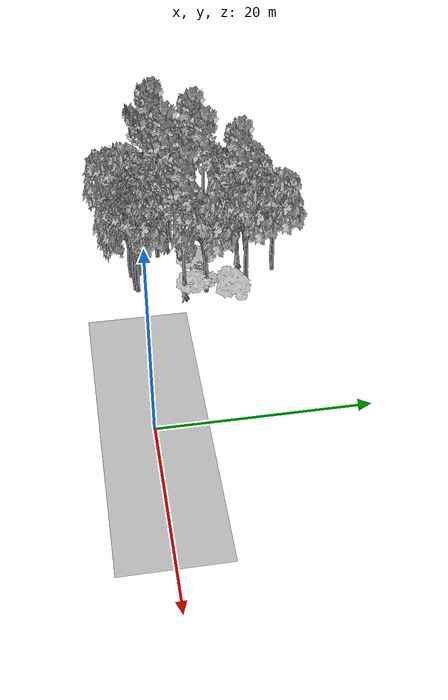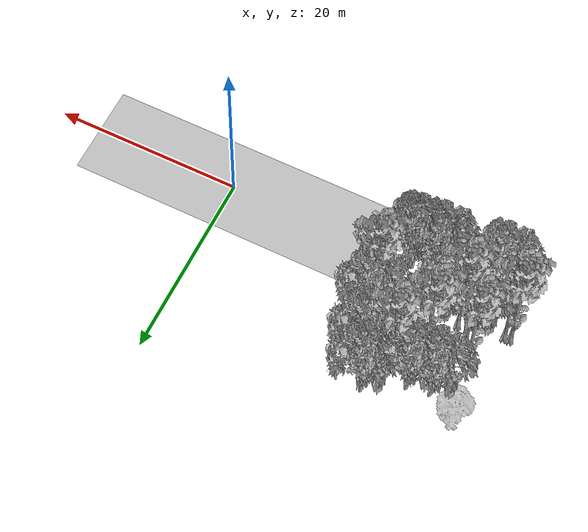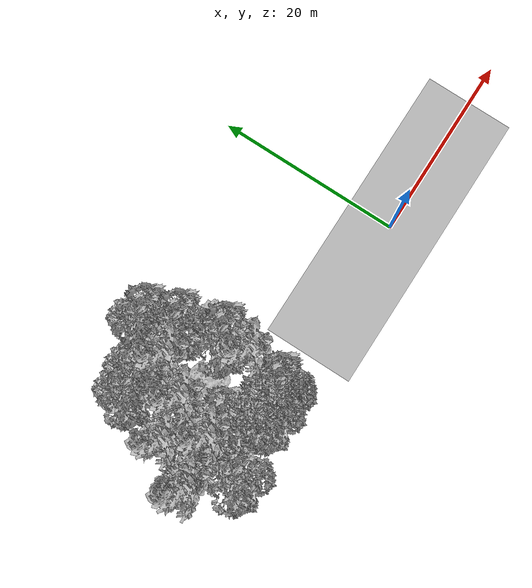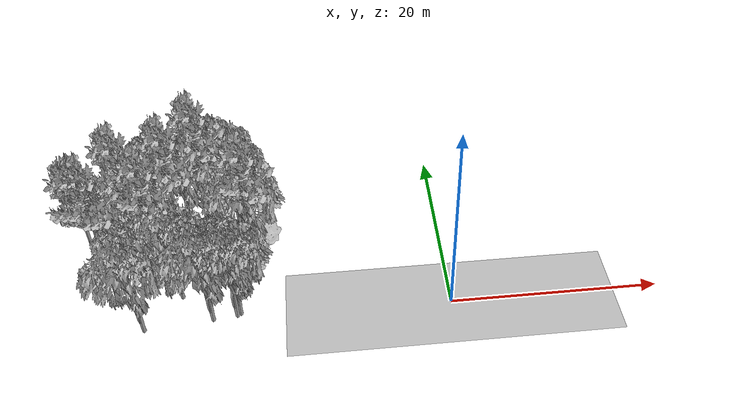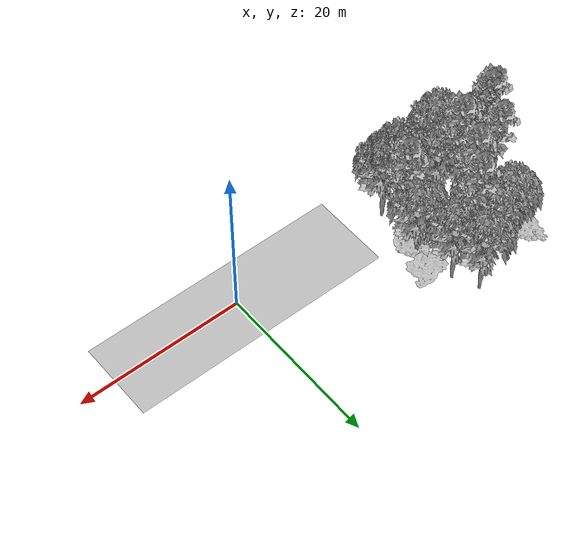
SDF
<sdf version="1.7">
 <world name="default">
  <model name="ground_plane">
   <static>1</static>
   <link name="link">
    <collision name="collision">
     <pose>-50 0 0 0 -0 0</pose>
     <geometry><plane><normal>0 0 1</normal><size>100 100</size></plane></geometry>
     <surface><contact><ode><min_depth>0.01</min_depth><max_vel>0</max_vel></ode></contact></surface>
    </collision>
    <visual name="grass">
     <cast_shadows>0</cast_shadows>
     <geometry>
      <mesh>
       <scale>0.5814285714285714 0.18142857142857144 0.1</scale>
       <uri>file://grass_plane/meshes/grass_plane.dae</uri>
      </mesh>
     </geometry>
    </visual>
   </link>
  </model>
  <model name="Tree 10">
   <static>1</static>
   <pose>-18.453464350637507 5.146567638253263 0 1.57079 -0 0</pose>
   <link name="link">
    <collision name="collision">
     <geometry><mesh><scale>3.5 5 3.5</scale><uri>model://tree_9/meshes/tree_9.obj</uri></mesh></geometry>
    </collision>
    <visual name="visual">
     <geometry><mesh><scale>3.5 5 3.5</scale><uri>model://tree_9/meshes/tree_9.obj</uri></mesh></geometry>
    </visual>
   </link>
  </model>
  <model name="Tree 18">
   <static>1</static>
   <pose>-25.53865518856384 3.1005544694515983 0 1.57079 -0 0</pose>
   <link name="link">
    <collision name="collision">
     <geometry><mesh><scale>3.5 5 3.5</scale><uri>model://tree_2/meshes/tree_2.obj</uri></mesh></geometry>
    </collision>
    <visual name="visual">
     <geometry><mesh><scale>3.5 5 3.5</scale><uri>model://tree_2/meshes/tree_2.obj</uri></mesh></geometry>
    </visual>
   </link>
  </model>
  <model name="Tree 19">
   <static>1</static>
   <pose>-23.327662387530005 6.976736187923045 0 1.57079 -0 0</pose>
   <link name="link">
    <collision name="collision">
     <geometry><mesh><scale>4 2.5 4</scale><uri>model://tree_1/meshes/tree_1.obj</uri></mesh></geometry>
    </collision>
    <visual name="visual">
     <geometry><mesh><scale>4 2.5 4</scale><uri>model://tree_1/meshes/tree_1.obj</uri></mesh></geometry>
    </visual>
   </link>
  </model>
  <model name="Tree 30">
   <static>1</static>
   <pose>-22.51316490393116 -0.0031905332640533857 0 1.57079 -0 0</pose>
   <link name="link">
    <collision name="collision">
     <geometry><mesh><scale>3.5 5 3.5</scale><uri>model://tree_2/meshes/tree_2.obj</uri></mesh></geometry>
    </collision>
    <visual name="visual">
     <geometry><mesh><scale>3.5 5 3.5</scale><uri>model://tree_2/meshes/tree_2.obj</uri></mesh></geometry>
    </visual>
   </link>
  </model>
  <model name="Tree 34">
   <static>1</static>
   <pose>-19.95909837796274 0.46358298691831656 0 1.57079 -0 0</pose>
   <link name="link">
    <collision name="collision">
     <geometry><mesh><scale>3.5 5 3.5</scale><uri>model://tree_2/meshes/tree_2.obj</uri></mesh></geometry>
    </collision>
    <visual name="visual">
     <geometry><mesh><scale>3.5 5 3.5</scale><uri>model://tree_2/meshes/tree_2.obj</uri></mesh></geometry>
    </visual>
   </link>
  </model>
  <model name="Tree 44">
   <static>1</static>
   <pose>-25.282216749314564 8.10107365355509 0 1.57079 -0 0</pose>
   <link name="link">
    <collision name="collision">
     <geometry><mesh><scale>3.5 5 3.5</scale><uri>model://tree_9/meshes/tree_9.obj</uri></mesh></geometry>
    </collision>
    <visual name="visual">
     <geometry><mesh><scale>3.5 5 3.5</scale><uri>model://tree_9/meshes/tree_9.obj</uri></mesh></geometry>
    </visual>
   </link>
  </model>
  <model name="Tree 51">
   <static>1</static>
   <pose>-32.13080495679428 3.33322170464767 0 1.57079 -0 0</pose>
   <link name="link">
    <collision name="collision">
     <geometry><mesh><scale>3.5 5 3.5</scale><uri>model://tree_9/meshes/tree_9.obj</uri></mesh></geometry>
    </collision>
    <visual name="visual">
     <geometry><mesh><scale>3.5 5 3.5</scale><uri>model://tree_9/meshes/tree_9.obj</uri></mesh></geometry>
    </visual>
   </link>
  </model>
  <model name="Tree 66">
   <static>1</static>
   <pose>-20.278403189005754 0.25568256909267184 0 1.57079 -0 0</pose>
   <link name="link">
    <collision name="collision">
     <geometry><mesh><scale>3.5 5 3.5</scale><uri>model://tree_2/meshes/tree_2.obj</uri></mesh></geometry>
    </collision>
    <visual name="visual">
     <geometry><mesh><scale>3.5 5 3.5</scale><uri>model://tree_2/meshes/tree_2.obj</uri></mesh></geometry>
    </visual>
   </link>
  </model>
  <model name="Tree 68">
   <static>1</static>
   <pose>-27.563422004254452 12.173228651601427 0 1.57079 -0 0</pose>
   <link name="link">
    <collision name="collision">
     <geometry><mesh><scale>3.5 5 3.5</scale><uri>model://tree_2/meshes/tree_2.obj</uri></mesh></geometry>
    </collision>
    <visual name="visual">
     <geometry><mesh><scale>3.5 5 3.5</scale><uri>model://tree_2/meshes/tree_2.obj</uri></mesh></geometry>
    </visual>
   </link>
  </model>
  <model name="Tree 82">
   <static>1</static>
   <pose>-28.015516602993937 4.72841905503503 0 1.57079 -0 0</pose>
   <link name="link">
    <collision name="collision">
     <geometry><mesh><scale>3.5 5 3.5</scale><uri>model://tree_2/meshes/tree_2.obj</uri></mesh></geometry>
    </collision>
    <visual name="visual">
     <geometry><mesh><scale>3.5 5 3.5</scale><uri>model://tree_2/meshes/tree_2.obj</uri></mesh></geometry>
    </visual>
   </link>
  </model>
  <model name="Tree 89">
   <static>1</static>
   <pose>-18.14235642771436 9.72642814884792 0 1.57079 -0 0</pose>
   <link name="link">
    <collision name="collision">
     <geometry><mesh><scale>3 2 3</scale><uri>model://tree_3/meshes/tree_3.obj</uri></mesh></geometry>
    </collision>
    <visual name="visual">
     <geometry><mesh><scale>3 2 3</scale><uri>model://tree_3/meshes/tree_3.obj</uri></mesh></geometry>
    </visual>
   </link>
  </model>
  <model name="Tree 98">
   <static>1</static>
   <pose>-31.501666136650293 3.352146060480436 0 1.57079 -0 0</pose>
   <link name="link">
    <collision name="collision">
     <geometry><mesh><scale>3.5 5 3.5</scale><uri>model://tree_9/meshes/tree_9.obj</uri></mesh></geometry>
    </collision>
    <visual name="visual">
     <geometry><mesh><scale>3.5 5 3.5</scale><uri>model://tree_9/meshes/tree_9.obj</uri></mesh></geometry>
    </visual>
   </link>
  </model>
  <model name="Tree 137">
   <static>1</static>
   <pose>-28.79313385146398 -0.6418177284294764 0 1.57079 -0 0</pose>
   <link name="link">
    <collision name="collision">
     <geometry><mesh><scale>3.5 5 3.5</scale><uri>model://tree_2/meshes/tree_2.obj</uri></mesh></geometry>
    </collision>
    <visual name="visual">
     <geometry><mesh><scale>3.5 5 3.5</scale><uri>model://tree_2/meshes/tree_2.obj</uri></mesh></geometry>
    </visual>
   </link>
  </model>
  <model name="Tree 157">
   <static>1</static>
   <pose>-25.242212349212142 12.536750736321085 0 1.57079 -0 0</pose>
   <link name="link">
    <collision name="collision">
     <geometry><mesh><scale>3.5 5 3.5</scale><uri>model://tree_2/meshes/tree_2.obj</uri></mesh></geometry>
    </collision>
    <visual name="visual">
     <geometry><mesh><scale>3.5 5 3.5</scale><uri>model://tree_2/meshes/tree_2.obj</uri></mesh></geometry>
    </visual>
   </link>
  </model>
  <model name="Tree 183">
   <static>1</static>
   <pose>-21.430811929846787 14.714238516502405 0 1.57079 -0 0</pose>
   <link name="link">
    <collision name="collision">
     <geometry><mesh><scale>3.5 5 3.5</scale><uri>model://tree_2/meshes/tree_2.obj</uri></mesh></geometry>
    </collision>
    <visual name="visual">
     <geometry><mesh><scale>3.5 5 3.5</scale><uri>model://tree_2/meshes/tree_2.obj</uri></mesh></geometry>
    </visual>
   </link>
  </model>
  <model name="Tree 190">
   <static>1</static>
   <pose>-18.80647473331475 7.397620878546128 0 1.57079 -0 0</pose>
   <link name="link">
    <collision name="collision">
     <geometry><mesh><scale>3.5 5 3.5</scale><uri>model://tree_2/meshes/tree_2.obj</uri></mesh></geometry>
    </collision>
    <visual name="visual">
     <geometry><mesh><scale>3.5 5 3.5</scale><uri>model://tree_2/meshes/tree_2.obj</uri></mesh></geometry>
    </visual>
   </link>
  </model>
  <model name="Tree 219">
   <static>1</static>
   <pose>-29.358374446375837 7.357912245648283 0 1.57079 -0 0</pose>
   <link name="link">
    <collision name="collision">
     <geometry><mesh><scale>3.5 5 3.5</scale><uri>model://tree_9/meshes/tree_9.obj</uri></mesh></geometry>
    </collision>
    <visual name="visual">
     <geometry><mesh><scale>3.5 5 3.5</scale><uri>model://tree_9/meshes/tree_9.obj</uri></mesh></geometry>
    </visual>
   </link>
  </model>
  <model name="Tree 224">
   <static>1</static>
   <pose>-30.355896015128806 12.581197093472891 0 1.57079 -0 0</pose>
   <link name="link">
    <collision name="collision">
     <geometry><mesh><scale>4 2.5 4</scale><uri>model://tree_1/meshes/tree_1.obj</uri></mesh></geometry>
    </collision>
    <visual name="visual">
     <geometry><mesh><scale>4 2.5 4</scale><uri>model://tree_1/meshes/tree_1.obj</uri></mesh></geometry>
    </visual>
   </link>
  </model>
  <model name="Tree 227">
   <static>1</static>
   <pose>-22.73263754132083 0.9302595779162566 0 1.57079 -0 0</pose>
   <link name="link">
    <collision name="collision">
     <geometry><mesh><scale>3.5 5 3.5</scale><uri>model://tree_2/meshes/tree_2.obj</uri></mesh></geometry>
    </collision>
    <visual name="visual">
     <geometry><mesh><scale>3.5 5 3.5</scale><uri>model://tree_2/meshes/tree_2.obj</uri></mesh></geometry>
    </visual>
   </link>
  </model>
  <model name="Tree 249">
   <static>1</static>
   <pose>-26.899716357599356 4.185037220236119 0 1.57079 -0 0</pose>
   <link name="link">
    <collision name="collision">
     <geometry><mesh><scale>3.5 5 3.5</scale><uri>model://tree_9/meshes/tree_9.obj</uri></mesh></geometry>
    </collision>
    <visual name="visual">
     <geometry><mesh><scale>3.5 5 3.5</scale><uri>model://tree_9/meshes/tree_9.obj</uri></mesh></geometry>
    </visual>
   </link>
  </model>
  <model name="Tree 270">
   <static>1</static>
   <pose>-19.19313643435309 6.490286334838544 0 1.57079 -0 0</pose>
   <link name="link">
    <collision name="collision">
     <geometry><mesh><scale>4 2.5 4</scale><uri>model://tree_1/meshes/tree_1.obj</uri></mesh></geometry>
    </collision>
    <visual name="visual">
     <geometry><mesh><scale>4 2.5 4</scale><uri>model://tree_1/meshes/tree_1.obj</uri></mesh></geometry>
    </visual>
   </link>
  </model>
  <model name="Tree 274">
   <static>1</static>
   <pose>-28.22219765582337 4.581092746326785 0 1.57079 -0 0</pose>
   <link name="link">
    <collision name="collision">
     <geometry><mesh><scale>3.5 5 3.5</scale><uri>model://tree_2/meshes/tree_2.obj</uri></mesh></geometry>
    </collision>
    <visual name="visual">
     <geometry><mesh><scale>3.5 5 3.5</scale><uri>model://tree_2/meshes/tree_2.obj</uri></mesh></geometry>
    </visual>
   </link>
  </model>
  <model name="Tree 286">
   <static>1</static>
   <pose>-20.134364150953008 11.757054037541973 0 1.57079 -0 0</pose>
   <link name="link">
    <collision name="collision">
     <geometry><mesh><scale>3.5 5 3.5</scale><uri>model://tree_2/meshes/tree_2.obj</uri></mesh></geometry>
    </collision>
    <visual name="visual">
     <geometry><mesh><scale>3.5 5 3.5</scale><uri>model://tree_2/meshes/tree_2.obj</uri></mesh></geometry>
    </visual>
   </link>
  </model>
  <model name="Tree 294">
   <static>1</static>
   <pose>-22.883491807572145 11.25902301194554 0 1.57079 -0 0</pose>
   <link name="link">
    <collision name="collision">
     <geometry><mesh><scale>3.5 5 3.5</scale><uri>model://tree_9/meshes/tree_9.obj</uri></mesh></geometry>
    </collision>
    <visual name="visual">
     <geometry><mesh><scale>3.5 5 3.5</scale><uri>model://tree_9/meshes/tree_9.obj</uri></mesh></geometry>
    </visual>
   </link>
  </model>
  <model name="Bush 1">
   <static>1</static>
   <pose>-21.224009468196268 6.8445097041708 0 1.57079 -0 0</pose>
   <link name="link">
    <collision name="collision">
     <geometry><mesh><scale>2 2 2</scale><uri>model://bush_1/meshes/bush_1.obj</uri></mesh></geometry>
     <surface><contact><collide_without_contact>false</collide_without_contact></contact></surface>
    </collision>
    <visual name="visual">
     <geometry><mesh><scale>2 2 2</scale><uri>model://bush_1/meshes/bush_1.obj</uri></mesh></geometry>
    </visual>
   </link>
  </model>
 </world>
</sdf>
